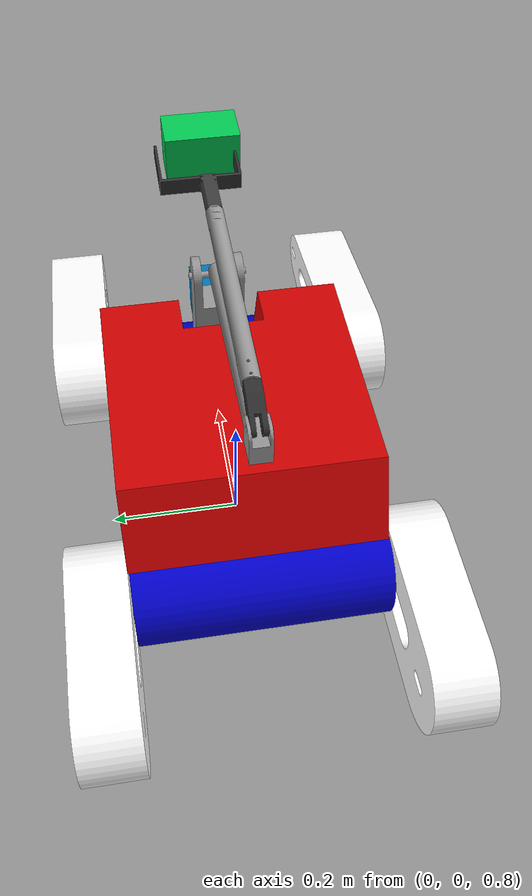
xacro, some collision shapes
<?xml version="1.0"?>
<robot name="auto_robot" xmlns:sensor="http://playerstage.sourceforge.net/gazebo/xmlschema/#sensor"
       xmlns:controller="http://playerstage.sourceforge.net/gazebo/xmlschema/#controller"
       xmlns:interface="http://playerstage.sourceforge.net/gazebo/xmlschema/#interface"
       xmlns:xacro="http://ros.org/wiki/xacro">
  <gazebo reference="laser">
        <sensor type="ray" name="hokuyo">
          <always_on>true</always_on>
          <update_rate>40</update_rate>
          <pose>0 0 0 0 0 0</pose>
          <visualize>false</visualize>
          <ray>
            <scan>
              <horizontal>
                <samples>1024</samples>
                <resolution>1</resolution>
                <min_angle>2.26</min_angle>
                <max_angle>-2.26</max_angle>
              </horizontal>
            </scan>
            <range>
              <min>0.08</min>
              <max>30.0</max>
              <resolution>0.01</resolution>
            </range>
          </ray>
          <plugin name="gazebo_ros_hokuyo_controller" filename="libgazebo_ros_laser.so">
            <gaussianNoise>0.005</gaussianNoise>
            <alwaysOn>true</alwaysOn>
            <updateRate>40</updateRate>
            <topicName>/scan</topicName>
            <frameName>laser</frameName>
          </plugin>
        </sensor>

      </gazebo>

	<link name="base_footprint">
			<origin xyz="0 0 0" rpy="1.57075 0 0"/>
	</link>
	<link name="base_stabilized">

	</link>
	<link name="camera_depth_optical_frame">

	</link>
	<link name="base_link">
		<visual>

			<geometry>

				<mesh filename="package://teleop_description/mesh/auto_base.DAE"/>

 				<box size="0.6 .2 .1"/>

			</geometry>
			<origin xyz="0 0 0" rpy="1.57075 0 0"/>
			<material name="blue">
           			<color rgba="0 0 .8 1"/>
  		       </material>
		</visual>
	</link>

      <link name="laser">
        <inertial>
          <mass value="0.270" />
          <origin xyz="0 0 0" rpy="0 0 0" />
          <inertia ixx="2.632e-4" ixy="0" ixz="0" iyy="2.632e-4" iyz="0" izz="1.62e-4" />
        </inertial>
        <visual>
          <origin xyz="0 0 0" rpy="0 0 0" />
          <geometry>
          <mesh filename="package://hector_sensors_description/meshes/hokuyo_utm30lx/hokuyo_utm_30lx.dae"/>
        </geometry>
        </visual>
        <collision>
          <origin xyz="0 0 -0.0115" rpy="0 0 0" />
          <geometry>
          <box size="0.058 0.058 0.087" />
        </geometry>
        </collision>
      </link>

	<link name="LFrontLeg_link">
 		<inertial>
                        <origin xyz="0 0 0" rpy="0 0 0"/>
                               <mass value="0.02"/>
                        <inertia ixx="0.0002" ixy="0" ixz="0" iyy="0.0002" iyz="0" izz="0.0002"/>
                </inertial>
		<visual>
			<geometry>
				<mesh filename="package://teleop_description/mesh/auto_FrontLeg.DAE"/>
			</geometry>
			<origin xyz="0 0.085 0" rpy="1.57075 0 0"/>
			<material name="white">
           			<color rgba="1 1 1 1"/>
  		       </material>
		</visual>
	</link>

	<link name="LBackLeg_link">
		<visual>
			<geometry>
				<mesh filename="package://teleop_description/mesh/auto_BackLeg.DAE"/>
			</geometry>

			<origin xyz="0 0.085 0" rpy="1.57075 0 0"/>
			<material name="white">
           			<color rgba="1 1 1 1"/>
  		       </material>
		</visual>
	</link>

	<link name="RFrontLeg_link">
	<inertial>
                        <origin xyz="0 0 0" rpy="0 0 0"/>
                        <mass value="0.02"/>
                        <inertia ixx="0.0002" ixy="0" ixz="0" iyy="0.0002" iyz="0" izz="0.0002"/>
                </inertial>
		<visual>
			<geometry>
				<mesh filename="package://teleop_description/mesh/auto_FrontLeg.DAE"/>
			</geometry>

			<origin xyz="0 0 0" rpy="1.57075 0 0"/>
			<material name="white">
           			<color rgba="1 1 1 1"/>
  		       </material>
		</visual>
	</link>

	<link name="RBackLeg_link">
		<visual>
			<geometry>
				<mesh filename="package://teleop_description/mesh/auto_BackLeg.DAE"/>
			</geometry>

			<origin xyz="0 0 0" rpy="1.57075 0 0"/>
			<material name="white">
           			<color rgba="1 1 1 1"/>
  		       </material>
		</visual>
	</link>

<link name="top_link">
		<visual>
			<geometry>
				<mesh filename="package://teleop_description/mesh/auto_top.DAE"/>
			</geometry>
			<origin xyz="0 0 0" rpy="1.57075 0 0"/>
		<material name="red">
           			<color rgba="0.8 0 0 1"/>
   			</material>
		</visual>
	</link>

	<link name="mani0_link">
		<visual>
			<geometry>
				<mesh filename="package://teleop_description/mesh/auto_mani0.DAE"/>
			</geometry>
			<origin xyz="0 0 0" rpy="1.57075 0 0"/>
		</visual>
	</link>

	<link name="mani1_link">
		<visual>
			<geometry>
				<mesh filename="package://teleop_description/mesh/auto_mani1.DAE"/>
			</geometry>
			<origin xyz="0 0 0" rpy="1.57075 0.143 0"/>
		</visual>
	</link>

	<link name="mani2_link">
		<visual>
			<geometry>
				<mesh filename="package://teleop_description/mesh/auto_mani2.DAE"/>
			</geometry>
			<origin xyz="0 0 0" rpy="1.57075 -0.4957 0"/>
		</visual>
	</link>
	<link name="mani3_link">
		<visual>
			<geometry>
				<mesh filename="package://teleop_description/mesh/auto_mani3.DAE"/>
			</geometry>
			<origin xyz="0 0 0.007" rpy="1.57075 0 0"/>
		</visual>
	</link>

	<link name="mani4_link">
		<visual>
			<geometry>
				<mesh filename="package://teleop_description/mesh/auto_mani4.DAE"/>
			</geometry>
			<origin xyz="0 0 0.007" rpy="1.57075 0 0"/>
		</visual>
	</link>

	<link name="mani5_link">
		<visual>
			<geometry>
				<mesh filename="package://teleop_description/mesh/auto_mani5.DAE"/>
			</geometry>
			<origin xyz="0 0 0" rpy="1.57075 0 0"/>
		</visual>
	</link>

	<link name="endeffector_link">
		<visual>
			<geometry>
				<mesh filename="package://teleop_description/mesh/auto_endeffector.DAE"/>
			</geometry>
			<origin xyz="0 0 0" rpy="1.57075 0 0"/>
		</visual>
	</link>

	<joint name="LFrontLeg_joint" type="continuous">

		<parent link="base_link"/>
		<child link="LFrontLeg_link"/>
		<origin xyz="0.203 0.178 -0.075" rpy="0 0 0"/>
		<axis xyz="0 1 0"/>
		<limit effort="100" velocity="100"/>
		<joint_propreties damping="0.0" friction="0.0"/>
		<anchor xyz="0 0 0"/>
	</joint>

	<joint name="LBackLeg_joint" type="continuous">
		<parent link="base_link"/>
		<child link="LBackLeg_link"/>
		<origin xyz="-0.203 0.178 -0.075" rpy="0 0 0"/>
		<axis xyz="0 1 0"/>
	</joint>

	<joint name="RFrontLeg_joint" type="continuous">
		<parent link="base_link"/>
		<child link="RFrontLeg_link"/>
		<origin xyz="0.203 -0.178 -0.075" rpy="0 0 0"/>
		<axis xyz="0 1 0"/>
		<limit effort="100" velocity="100"/>
		<joint_propreties damping="0.0" friction="0.0"/>
		<anchor xyz="0 0 0"/>
	</joint>

	<joint name="RBackLeg_joint" type="continuous">
		<parent link="base_link"/>
		<child link="RBackLeg_link"/>
		<origin xyz="-0.203 -0.178 -0.075" rpy="0 0 0"/>
		<axis xyz="0 1 0"/>
	</joint>

<joint name="top_joint" type="fixed">
		<parent link="base_link"/>
		<child link="top_link"/>
		<origin xyz="0 0 0" rpy="0 0 0"/>
	</joint>
	<joint name="camera_depth_optical_frame" type="fixed">
		<parent link="base_link"/>
		<child link="camera_depth_optical_frame"/>
		<origin xyz="0 0 0" rpy="0 0 0"/>
	</joint>
	<joint name="base_stabilized" type="fixed">
		<parent link="base_footprint"/>
		<child link="base_stabilized"/>
		<origin xyz="0 0 0" rpy="0 0 0"/>
	</joint>

	<joint name="base_link" type="fixed">
		<parent link="base_stabilized"/>
		<child link="base_link"/>
		<origin xyz="0 0 1" rpy="0 0 0"/>
	</joint>

	 <joint name="hokuyo_joint" type="fixed">
        <parent link="base_link"/>
        <child link="laser"/>
	<origin xyz="0.3 0 0" rpy="0 0 0"/>
      </joint>
	<joint name="mani0_joint" type="continuous">
		<parent link="base_link"/>
		<child link="mani0_link"/>
		<origin xyz="0.1885 0 0" rpy="0 0 0"/>
		<axis xyz="0 0 1"/>
	</joint>

	<joint name="mani1_joint" type="continuous">
		<parent link="mani0_link"/>
		<child link="mani1_link"/>
		<origin xyz="0 0 0.145" rpy="0 0 0"/>
		<axis xyz="0 1 0"/>
	</joint>

	<joint name="mani2_joint" type="continuous">
		<parent link="mani1_link"/>
		<child link="mani2_link"/>
		<origin xyz="-0.36 0 0.08" rpy="0 0 0"/>
		<axis xyz="0 1 0"/>
	</joint>

	<joint name="mani3_joint" type="fixed">
		<parent link="mani2_link"/>
		<child link="mani3_link"/>
		<origin xyz="0.05 0 0.015" rpy="0 0 0"/>
	</joint>

	<joint name="mani4_joint" type="prismatic">
		<parent link="mani3_link"/>
		<child link="mani4_link"/>
		<origin xyz="0.391 0 0" rpy="0 0 0"/>
		<limit effort="1000.0" lower="0.18" upper="0" velocity="0.5"/>
	</joint>

	<joint name="mani5_joint" type="continuous">
		<parent link="mani4_link"/>
		<child link="mani5_link"/>
		<origin xyz="0 0 0" rpy="0 0 0"/>
		<axis xyz="1 0 0"/>
	</joint>

	<joint name="endeffector_joint" type="continuous">
		<parent link="mani5_link"/>
		<child link="endeffector_link"/>
		<origin xyz="0.09 0 0" rpy="0 0 0"/>
		<axis xyz="0 1 0"/>
	</joint>

        <!-- Transmission is important to link the joints and the controller -->
         <transmission name="joint_w1_trans" type="SimpleTransmission">
                <actuator name="joint_w1_motor" />
                <joint name="LFrontLeg_joint" />
                <mechanicalReduction>1</mechanicalReduction>
                <motorTorqueConstant>1</motorTorqueConstant>
        </transmission>

        <transmission name="joint_w2_trans" type="SimpleTransmission">
                <actuator name="joint_w2_motor" />
                <joint name="RFrontLeg_joint" />
                <mechanicalReduction>1</mechanicalReduction>
                <motorTorqueConstant>1</motorTorqueConstant>
        </transmission>

        <gazebo reference="base_link">
          <material>Gazebo/Green</material>
        </gazebo>

        <gazebo reference="LFrontLeg_link">
          <material>Gazebo/Red</material>
        </gazebo>

        <gazebo reference="RFrontLeg_link">
          <material>Gazebo/Blue</material>
        </gazebo>

 <gazebo>
      <plugin name="differential_drive_controller_back" filename="libgazebo_ros_diff_drive.so">
<alwaysOn>true</alwaysOn>
<updateRate>100.0</updateRate>
<leftJoint>LFrontLeg_joint</leftJoint>
<rightJoint>RFrontLeg_joint</rightJoint>
<wheelSeparation>0.5</wheelSeparation>
<wheelDiameter>0.5</wheelDiameter>
<torque>100</torque>
<commandTopic>cmd_vel</commandTopic>
<odometryTopic>odom</odometryTopic>
<odometryFrame>nav</odometryFrame>
<robotBaseFrame>base_link</robotBaseFrame>
</plugin>

  </gazebo>

 <sensor name="temp" update_rate="20">
   <parent link="endeffector_link"/>
   <origin xyz="0 0 0" rpy="0 0 0"/>

 </sensor>
</robot>
